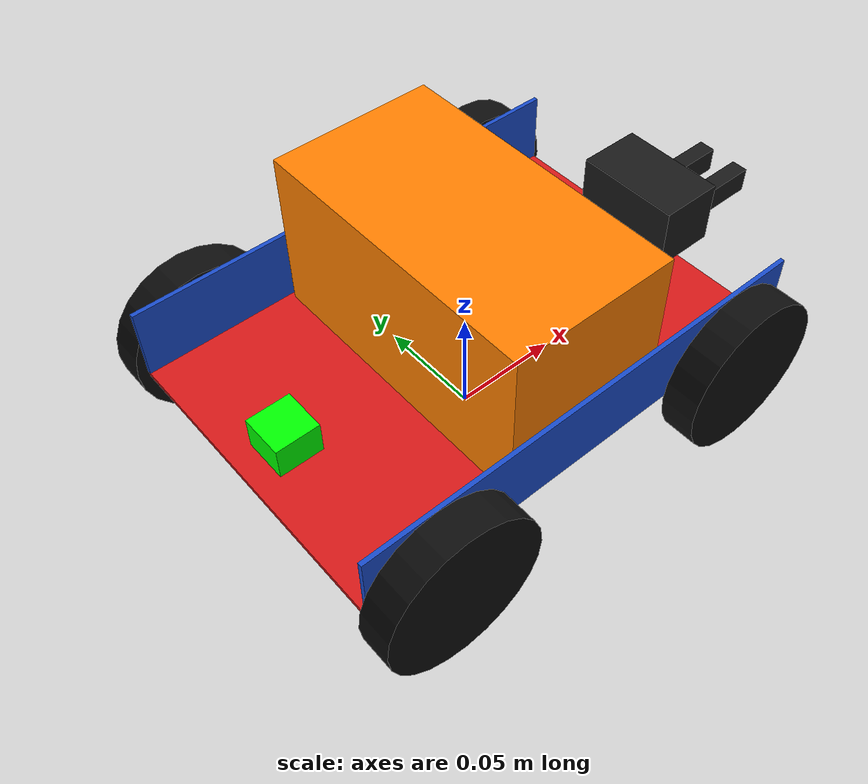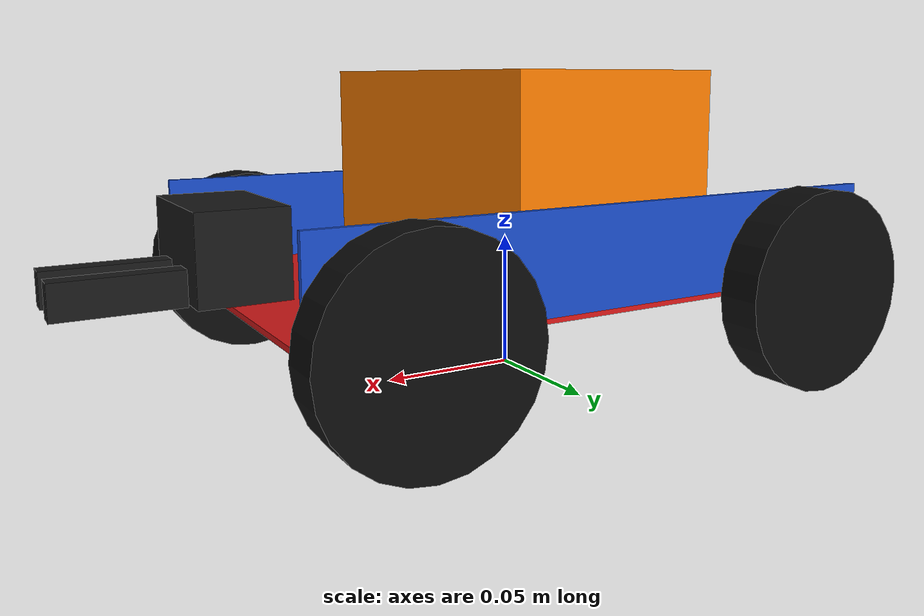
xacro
<?xml version="1.0"?>
<robot name="fwld" xmlns:xacro="http://www.ros.org/wiki/xacro">

  <xacro:arg name="robot_name" default="fwld"/>
  <xacro:property name="robot_name" value="$(arg robot_name)"/>

  <!--  MACROS                                                      -->

  <xacro:macro name="wheel" params="name">
    <link name="${name}">
      <visual>
        <origin xyz="0 0 0" rpy="-1.5708 0 0"/>
        <geometry>
          <cylinder radius="0.036" length="0.016"/>
        </geometry>
        <material name="black">
          <color rgba="0.05 0.05 0.05 1"/>
        </material>
      </visual>
      <inertial>
        <origin xyz="0 0 0" rpy="0 0 0"/>
        <mass value="0.260"/>
        <inertia
          ixx="8.468e-05" iyy="1.688e-04" izz="8.468e-05"
          ixy="0.0"       iyz="0.0"       ixz="0.0"/>
      </inertial>
      <collision>
        <origin xyz="0 0 0" rpy="-1.5708 0 0"/>
        <geometry>
          <cylinder radius="0.036" length="0.016"/>
        </geometry>
      </collision>
    </link>
    <gazebo reference="${name}">
      <material>Gazebo/Black</material>
      <mu1>2.0</mu1>
      <mu2>2.0</mu2>
      <kp>1e6</kp>
      <kd>10.0</kd>
      <minDepth>0.001</minDepth>
    </gazebo>
  </xacro:macro>

  <xacro:macro name="side_panel" params="name">
    <link name="${name}">
      <visual>
        <geometry><box size="0.218 0.034 0.002"/></geometry>
        <material name="panel_blue">
          <color rgba="0.1 0.3 0.8 1"/>
        </material>
      </visual>
      <inertial>
        <mass value="0.05"/>
        <inertia ixx="4.833e-06" ixy="0" ixz="0"
                 iyy="1.980e-04" iyz="0" izz="2.027e-04"/>
      </inertial>
      <collision>
        <geometry><box size="0.218 0.034 0.002"/></geometry>
      </collision>
    </link>
    <gazebo reference="${name}">
      <material>Gazebo/Blue</material>
    </gazebo>
  </xacro:macro>

  <!--  LINKS                                                       -->

  <!-- base_footprint = massless root (required by KDL/robot_state_publisher) -->
  <link name="${robot_name}_base_footprint"/>

  <link name="${robot_name}_base_link">
    <visual>
      <geometry><box size="0.218 0.147 0.002"/></geometry>
      <material name="chassis_red">
        <color rgba="0.85 0.1 0.1 1"/>
      </material>
    </visual>
    <inertial>
      <origin xyz="0 0 0" rpy="0 0 0"/>
      <mass value="0.5"/>
      <inertia ixx="9.005e-04" ixy="0" ixz="0"
               iyy="1.980e-03" iyz="0" izz="2.881e-03"/>
    </inertial>
    <collision>
      <geometry><box size="0.218 0.147 0.002"/></geometry>
    </collision>
  </link>

  <link name="${robot_name}_battery">
    <visual>
      <geometry><box size="0.076 0.140 0.076"/></geometry>
      <material name="battery_orange">
        <color rgba="1.0 0.5 0.0 1"/>
      </material>
    </visual>
    <inertial>
      <mass value="1.36"/>
      <inertia ixx="2.876e-03" ixy="0" ixz="0"
               iyy="1.309e-03" iyz="0" izz="2.876e-03"/>
    </inertial>
    <collision>
      <geometry><box size="0.076 0.140 0.076"/></geometry>
    </collision>
  </link>

  <xacro:wheel name="${robot_name}_w1"/>
  <xacro:wheel name="${robot_name}_w2"/>
  <xacro:wheel name="${robot_name}_w3"/>
  <xacro:wheel name="${robot_name}_w4"/>
  <xacro:side_panel name="${robot_name}_left_panel"/>
  <xacro:side_panel name="${robot_name}_right_panel"/>

  <!--  GRIPPER (floor-level pick, functional/actuated)             -->
  <!--  base_link -> lift (prismatic, z) -> gripper_base            -->
  <!--             -> finger_left / finger_right (revolute)         -->

  <link name="${robot_name}_gripper_base">
    <visual>
      <geometry><box size="0.03 0.05 0.03"/></geometry>
      <material name="gripper_black"><color rgba="0.1 0.1 0.1 1"/></material>
    </visual>
    <inertial><mass value="0.05"/>
      <inertia ixx="1e-5" ixy="0" ixz="0" iyy="1e-5" iyz="0" izz="1e-5"/>
    </inertial>
    <collision><geometry><box size="0.03 0.05 0.03"/></geometry></collision>
  </link>

  <xacro:macro name="finger" params="name mirror">
    <link name="${name}">
      <visual>
        <origin xyz="0.02 0 0" rpy="0 0 0"/>
        <geometry><box size="0.04 0.008 0.012"/></geometry>
        <material name="gripper_black2"><color rgba="0.1 0.1 0.1 1"/></material>
      </visual>
      <inertial><mass value="0.01"/>
        <inertia ixx="1e-6" ixy="0" ixz="0" iyy="1e-6" iyz="0" izz="1e-6"/>
      </inertial>
      <collision>
        <origin xyz="0.02 0 0" rpy="0 0 0"/>
        <geometry><box size="0.04 0.008 0.012"/></geometry>
      </collision>
    </link>
    <gazebo reference="${name}">
      <mu1>1.5</mu1><mu2>1.5</mu2>
    </gazebo>
  </xacro:macro>
  <xacro:finger name="${robot_name}_finger_left"  mirror="1"/>
  <xacro:finger name="${robot_name}_finger_right" mirror="-1"/>

  <!-- Status LED: small emissive box on top of the chassis -->
  <link name="${robot_name}_led">
    <visual>
      <geometry><box size="0.02 0.02 0.015"/></geometry>
      <material name="led_idle"><color rgba="0.0 1.0 0.0 1"/></material>
    </visual>
    <inertial><mass value="0.001"/>
      <inertia ixx="1e-8" ixy="0" ixz="0" iyy="1e-8" iyz="0" izz="1e-8"/>
    </inertial>
  </link>

  <!--  JOINTS                                                      -->

  <!-- base_footprint → base_link: wheels at z=0 rel to base_link,
       spawn at z=0.036 so wheel bottoms touch ground -->
  <joint name="${robot_name}_base_footprint_joint" type="fixed">
    <parent link="${robot_name}_base_footprint"/>
    <child  link="${robot_name}_base_link"/>
    <origin xyz="0 0 0.036" rpy="0 0 0"/>
  </joint>

  <joint name="${robot_name}_j2" type="fixed">
    <parent link="${robot_name}_base_link"/>
    <child  link="${robot_name}_left_panel"/>
    <origin xyz="0 0.0735 0.018" rpy="1.5708 0 0"/>
  </joint>

  <joint name="${robot_name}_j3" type="fixed">
    <parent link="${robot_name}_base_link"/>
    <child  link="${robot_name}_right_panel"/>
    <origin xyz="0 -0.0735 0.018" rpy="1.5708 0 0"/>
  </joint>

  <joint name="${robot_name}_j4" type="fixed">
    <parent link="${robot_name}_base_link"/>
    <child  link="${robot_name}_battery"/>
    <origin xyz="0 0 0.039" rpy="0 0 0"/>
  </joint>

  <joint name="${robot_name}_r1" type="continuous">
    <parent link="${robot_name}_base_link"/>
    <child  link="${robot_name}_w1"/>
    <origin xyz=" 0.0775 -0.083 0" rpy="0 0 0"/>
    <axis xyz="0 1 0"/>
    <limit effort="10" velocity="10"/>
  </joint>

  <joint name="${robot_name}_r2" type="continuous">
    <parent link="${robot_name}_base_link"/>
    <child  link="${robot_name}_w2"/>
    <origin xyz="-0.0775 -0.083 0" rpy="0 0 0"/>
    <axis xyz="0 1 0"/>
    <limit effort="10" velocity="10"/>
  </joint>

  <joint name="${robot_name}_r3" type="continuous">
    <parent link="${robot_name}_base_link"/>
    <child  link="${robot_name}_w3"/>
    <origin xyz="-0.0775  0.083 0" rpy="0 0 0"/>
    <axis xyz="0 1 0"/>
    <limit effort="10" velocity="10"/>
  </joint>

  <joint name="${robot_name}_r4" type="continuous">
    <parent link="${robot_name}_base_link"/>
    <child  link="${robot_name}_w4"/>
    <origin xyz=" 0.0775  0.083 0" rpy="0 0 0"/>
    <axis xyz="0 1 0"/>
    <limit effort="10" velocity="10"/>
  </joint>

  <!-- Lift: mounted at front-top of chassis, travels down toward the
       floor to reach a floor-level object. base_link origin is 0.036m
       above the floor, so a 0.032m downward stroke is enough. -->
  <joint name="${robot_name}_lift_joint" type="prismatic">
    <parent link="${robot_name}_base_link"/>
    <child  link="${robot_name}_gripper_base"/>
    <origin xyz="0.109 0 0.02" rpy="0 0 0"/>
    <axis xyz="0 0 1"/>
    <limit lower="-0.032" upper="0.0" effort="20" velocity="0.1"/>
  </joint>

  <joint name="${robot_name}_finger_left_joint" type="revolute">
    <parent link="${robot_name}_gripper_base"/>
    <child  link="${robot_name}_finger_left"/>
    <origin xyz="0.015 0.01 -0.01" rpy="0 0 0"/>
    <axis xyz="0 0 1"/>
    <limit lower="0.0" upper="0.6" effort="5" velocity="1.0"/>
  </joint>

  <joint name="${robot_name}_finger_right_joint" type="revolute">
    <parent link="${robot_name}_gripper_base"/>
    <child  link="${robot_name}_finger_right"/>
    <origin xyz="0.015 -0.01 -0.01" rpy="0 0 0"/>
    <axis xyz="0 0 -1"/>
    <limit lower="0.0" upper="0.6" effort="5" velocity="1.0"/>
  </joint>

  <joint name="${robot_name}_led_joint" type="fixed">
    <parent link="${robot_name}_base_link"/>
    <child  link="${robot_name}_led"/>
    <origin xyz="-0.09 0 0.015" rpy="0 0 0"/>
  </joint>

  <!--  GAZEBO                                                      -->

  <gazebo reference="${robot_name}_base_link">
    <material>Gazebo/Red</material>
  </gazebo>

  <gazebo reference="${robot_name}_battery">
    <material>Gazebo/Orange</material>
  </gazebo>

  <gazebo>
    <plugin filename="gz-sim-diff-drive-system"
            name="gz::sim::systems::DiffDrive">
      <left_joint>${robot_name}_r3</left_joint>
      <left_joint>${robot_name}_r4</left_joint>
      <right_joint>${robot_name}_r1</right_joint>
      <right_joint>${robot_name}_r2</right_joint>
      <wheel_separation>0.166</wheel_separation>
      <wheel_radius>0.036</wheel_radius>
      <odom_publish_frequency>50</odom_publish_frequency>
      <topic>/model/${robot_name}/cmd_vel</topic>
      <odom_topic>/model/${robot_name}/odometry</odom_topic>
      <tf_topic>/tf</tf_topic>
      <frame_id>${robot_name}_odom</frame_id>
      <child_frame_id>${robot_name}_base_link</child_frame_id>
      <min_acceleration>-5</min_acceleration>
      <max_acceleration>5</max_acceleration>
    </plugin>
  </gazebo>

  <!--
    gz-sim-joint-state-publisher: publishes joint_states from Gazebo.
  -->
  <gazebo>
    <plugin filename="gz-sim-joint-state-publisher-system"
            name="gz::sim::systems::JointStatePublisher">
      <topic>/model/${robot_name}/joint_states</topic>
      <joint_name>${robot_name}_r1</joint_name>
      <joint_name>${robot_name}_r2</joint_name>
      <joint_name>${robot_name}_r3</joint_name>
      <joint_name>${robot_name}_r4</joint_name>
      <joint_name>${robot_name}_lift_joint</joint_name>
      <joint_name>${robot_name}_finger_left_joint</joint_name>
      <joint_name>${robot_name}_finger_right_joint</joint_name>
    </plugin>
  </gazebo>

  <gazebo>
    <plugin filename="gz-sim-joint-position-controller-system"
            name="gz::sim::systems::JointPositionController">
      <joint_name>${robot_name}_lift_joint</joint_name>
      <topic>/model/${robot_name}/gripper/cmd_lift</topic>
      <p_gain>50</p_gain><i_gain>0</i_gain><d_gain>2</d_gain>
      <cmd_max>20</cmd_max><cmd_min>-20</cmd_min>
    </plugin>
  </gazebo>
  <gazebo>
    <plugin filename="gz-sim-joint-position-controller-system"
            name="gz::sim::systems::JointPositionController">
      <joint_name>${robot_name}_finger_left_joint</joint_name>
      <topic>/model/${robot_name}/gripper/cmd_finger_left</topic>
      <p_gain>5</p_gain><i_gain>0</i_gain><d_gain>0.2</d_gain>
      <cmd_max>5</cmd_max><cmd_min>-5</cmd_min>
    </plugin>
  </gazebo>
  <gazebo>
    <plugin filename="gz-sim-joint-position-controller-system"
            name="gz::sim::systems::JointPositionController">
      <joint_name>${robot_name}_finger_right_joint</joint_name>
      <topic>/model/${robot_name}/gripper/cmd_finger_right</topic>
      <p_gain>5</p_gain><i_gain>0</i_gain><d_gain>0.2</d_gain>
      <cmd_max>5</cmd_max><cmd_min>-5</cmd_min>
    </plugin>
  </gazebo>

</robot>
